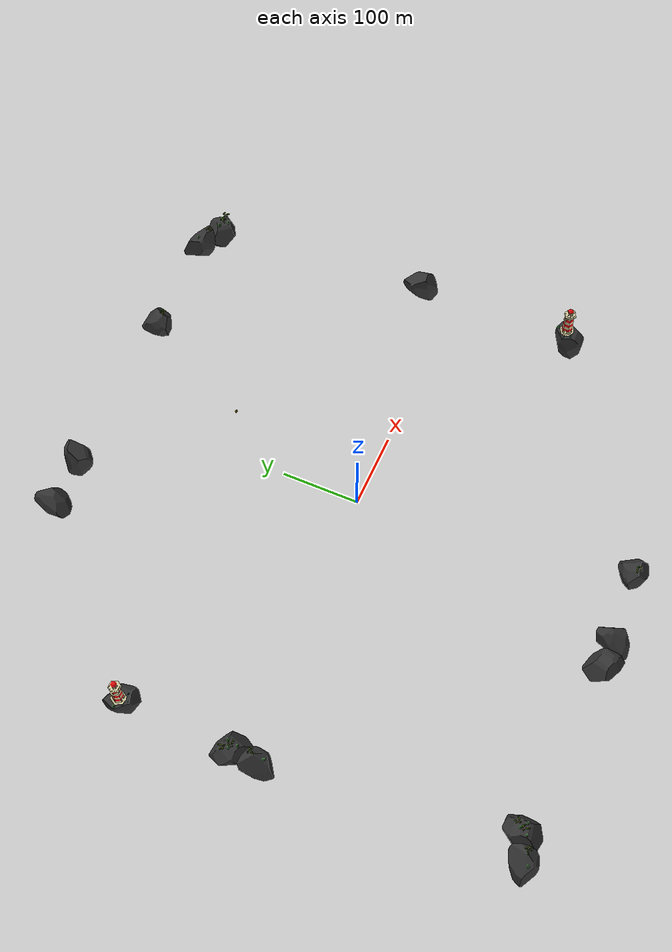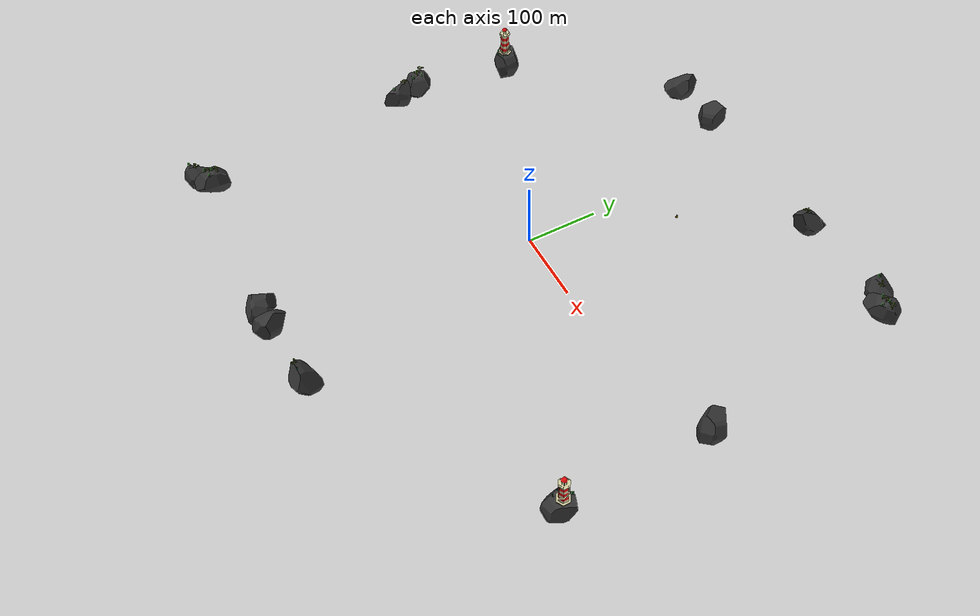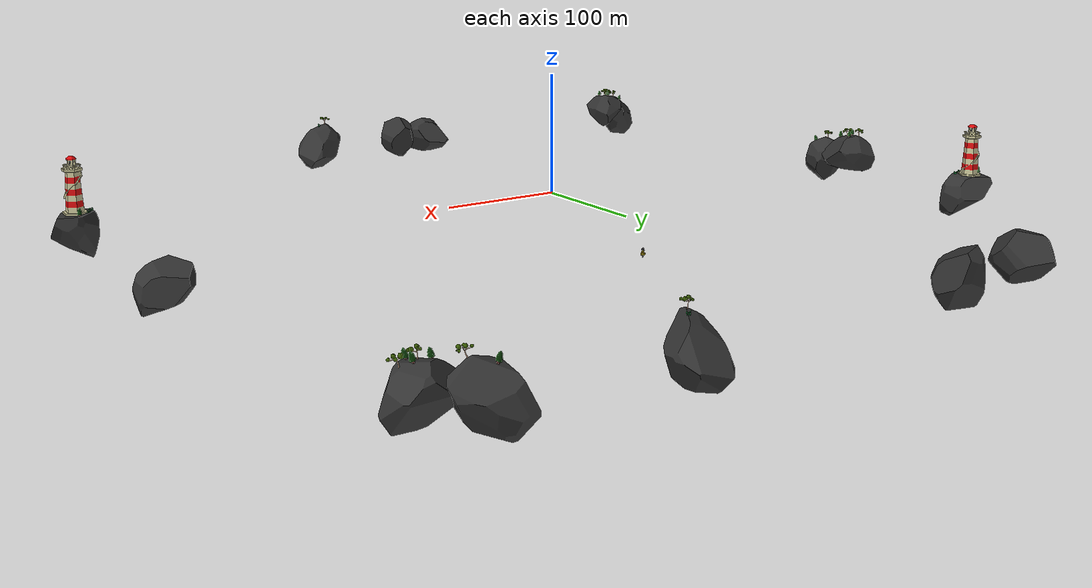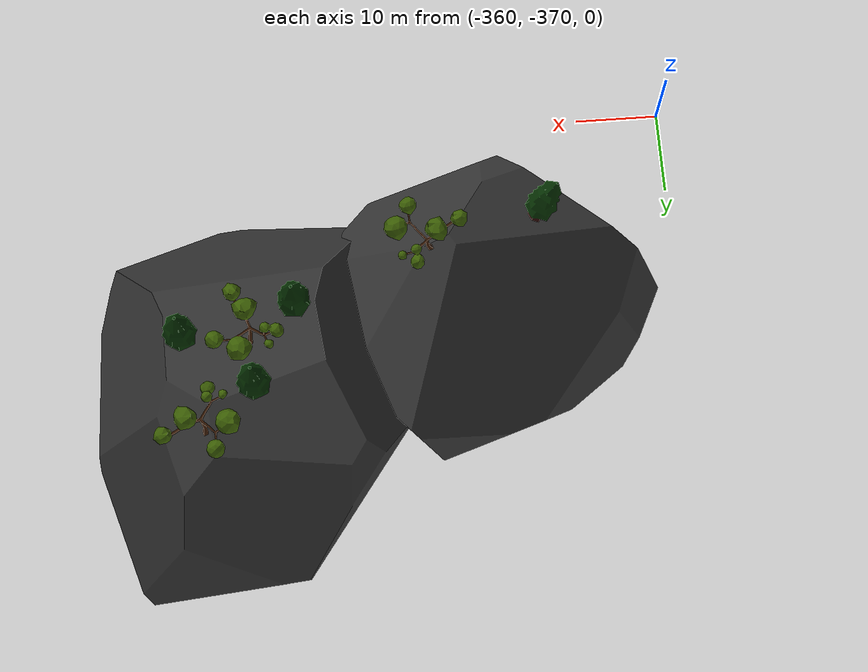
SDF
<sdf version="1.9">
 <world name="aquabot_task_easy">
  <physics name="4ms" type="dart">
   <max_step_size>0.004</max_step_size>
   <real_time_factor>0.0</real_time_factor>
   <real_time_update_rate>0.0</real_time_update_rate>
  </physics>
  <plugin filename="gz-sim-physics-system" name="gz::sim::systems::Physics"/>
  <plugin filename="gz-sim-user-commands-system" name="gz::sim::systems::UserCommands"/>
  <plugin filename="gz-sim-sensors-system" name="gz::sim::systems::Sensors">
   <render_engine>ogre2</render_engine>
   <disable_on_drained_battery>true</disable_on_drained_battery>
  </plugin>
  <plugin filename="gz-sim-imu-system" name="gz::sim::systems::Imu"/>
  <plugin filename="gz-sim-magnetometer-system" name="gz::sim::systems::Magnetometer"/>
  <plugin filename="gz-sim-forcetorque-system" name="gz::sim::systems::ForceTorque"/>
  <plugin filename="gz-sim-particle-emitter2-system" name="gz::sim::systems::ParticleEmitter2"/>
  <plugin filename="gz-sim-scene-broadcaster-system" name="gz::sim::systems::SceneBroadcaster"/>
  <plugin filename="gz-sim-contact-system" name="gz::sim::systems::Contact"/>
  <plugin filename="gz-sim-navsat-system" name="gz::sim::systems::NavSat"/>
  <scene><grid>false</grid><ambient>1.0 1.0 1.0</ambient><background>0.8 0.8 0.8</background></scene>
  <spherical_coordinates>
   <surface_model>EARTH_WGS84</surface_model>
   <world_frame_orientation>ENU</world_frame_orientation>
   <latitude_deg>48.04630</latitude_deg>
   <longitude_deg>-4.97632</longitude_deg>
   <elevation>0.0</elevation>
   <heading_deg>0.0</heading_deg>
  </spherical_coordinates>
  <light type="directional" name="sun">
   <cast_shadows>false</cast_shadows>
   <pose>0 0 10 0 0 0</pose>
   <diffuse>0.8 0.8 0.8 1</diffuse>
   <specular>0.2 0.2 0.2 1</specular>
   <attenuation>
    <range>1000</range>
    <constant>0.9</constant>
    <linear>0.01</linear>
    <quadratic>0.001</quadratic>
   </attenuation>
   <direction>-0.5 0.1 -0.9</direction>
  </light>
  <include>
   <name>aquabot_regatta_no_obstacles_world</name>
   <uri>aquabot_regatta_no_obstacles_world</uri>
  </include>
  <plugin filename="libUSVWind.so" name="vrx::USVWind">
   <wind_obj>
    <name>wamv</name>
    <link_name>wamv/base_link</link_name>
    <coeff_vector>.5 .5 .33</coeff_vector>
   </wind_obj>
   <wind_direction>240</wind_direction>
   <wind_mean_velocity>0.0</wind_mean_velocity>
   <var_wind_gain_constants>0</var_wind_gain_constants>
   <var_wind_time_constants>2</var_wind_time_constants>
   <random_seed>10</random_seed>
   <update_rate>10</update_rate>
   <topic_wind_speed>/vrx/debug/wind/speed</topic_wind_speed>
   <topic_wind_direction>/vrx/debug/wind/direction</topic_wind_direction>
  </plugin>
  <plugin filename="libPublisherPlugin.so" name="vrx::PublisherPlugin">
   <message type="gz.msgs.Param" topic="/vrx/wavefield/parameters" every="2.0">params {
          key: "direction"
          value {
            type: DOUBLE
            double_value: 0.0
          }
        }
        params {
          key: "gain"
          value {
            type: DOUBLE
            double_value: 0.3
          }
        }
        params {
          key: "period"
          value {
            type: DOUBLE
            double_value: 10.0
          }
        }
        params {
          key: "steepness"
          value {
            type: DOUBLE
            double_value: 0.0
          }
        }</message>
  </plugin>
  <generation_seed>iwvwlkNpKebaYJoQ</generation_seed>
  <include>
   <name>aquabot_sonar_buoy</name>
   <pose>59.301643 195.747949 0 0 1.57 0</pose>
   <uri>aquabot_sonar_buoy</uri>
   <plugin name="vrx::PolyhedraBuoyancyDrag" filename="libPolyhedraBuoyancyDrag.so">
    <fluid_density>1000</fluid_density>
    <fluid_level>0.0</fluid_level>
    <linear_drag>25.0</linear_drag>
    <angular_drag>2.0</angular_drag>
    <buoyancy name="collision_outer">
     <link_name>link</link_name>
     <pose>0 0 0 0 -1.57 0</pose>
     <geometry><cylinder><radius>1.0</radius><length>0.05</length></cylinder></geometry>
    </buoyancy>
    <wavefield><topic>/vrx/wavefield/parameters</topic></wavefield>
   </plugin>
  </include>
  <plugin filename="libPublisherPlugin.so" name="vrx::PublisherPlugin">
   <message type="gz.msgs.Vector3d" topic="/pinger/set_pinger_position" at="1.0">x: 59.301643, y: 195.747949, z: 0</message>
  </plugin>
  <plugin filename="libPatrolAndFollowScoringPlugin.so" name="vrx::PatrolAndFollowScoringPlugin">
   <vehicle>wamv</vehicle>
   <task_name>patrolandfollow</task_name>
   <task_info_topic>/vrx/task/info</task_info_topic>
   <initial_state_duration>10</initial_state_duration>
   <ready_state_duration>10</ready_state_duration>
   <running_state_duration>900</running_state_duration>
   <release_topic>/vrx/release</release_topic>
   <pinger_position>59.301643 195.747949 0</pinger_position>
   <target_name>ennemy</target_name>
   <markers><scaling>0.2 0.2 2.0</scaling><height>0.5</height></markers>
   <phase_rally_tolerance>20</phase_rally_tolerance>
   <phase_alert_process_period>1.0</phase_alert_process_period>
   <phase_alert_tolerance>50.0</phase_alert_tolerance>
   <phase_follow_process_period>1.0</phase_follow_process_period>
   <phase_follow_tolerance>50</phase_follow_tolerance>
   <phase_follow_target_distance>30</phase_follow_target_distance>
   <phase_follow_ennemy_time>180.0</phase_follow_ennemy_time>
   <collision_min_distance>10.0</collision_min_distance>
   <collision_finish>true</collision_finish>
   <collision_penality>10</collision_penality>
   <collision_objects>
    <object><name>ally_0</name></object>
    <object><name>ally_1</name></object>
   </collision_objects>
   <ais_allies_period>1.0</ais_allies_period>
   <ais_ennemy_period>10.0</ais_ennemy_period>
   <ais_ennemy_wait_time>180.0</ais_ennemy_wait_time>
  </plugin>
 </world>
</sdf>

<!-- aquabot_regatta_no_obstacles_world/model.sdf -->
<sdf version="1.6">
  <model name="aquabot_regatta_no_obstacles_world">
    <include>
      <name>aquabot_lighthouse_island_1</name>
      <pose>350 -150 0 0 0 0</pose>
      <uri>aquabot_lighthouse_island</uri>
    </include>
    <include>

      <name>aquabot_lighthouse_island_2</name>
      <pose>-350 150 0 0 0 1.57</pose>
      <uri>aquabot_lighthouse_island</uri>
    </include>

    <include>
      <name>aquabot_island_1</name>
      <pose>-350 0 0 0 0 -3.14</pose>
      <uri>aquabot_island</uri>
    </include>

    <include>
      <name>aquabot_island_2</name>
      <pose>310 340 4 0.2 0 1.0</pose>
      <uri>aquabot_island</uri>
    </include>

    <include>
      <name>aquabot_island_3</name>
      <pose>-310 -340 4 0.0 0 2.0</pose>
      <uri>aquabot_island</uri>
    </include>

    <include>
      <name>aquabot_rock_island_0</name>
      <pose>50 -350 0 0 0 0</pose>
      <uri>aquabot_rock_island_1</uri>
    </include>

    <include>
      <name>aquabot_rock_island_1</name>
      <pose>150 350 0 0 0 1</pose>
      <uri>aquabot_rock_island_1</uri>
    </include>

    <include>
      <name>aquabot_rock_0</name>
      <pose>-150 350 0 -2 1 -2</pose>
      <uri>aquabot_rock</uri>
    </include>

    <include>
      <name>aquabot_rock_1</name>
      <pose>-80 350 1 -2 2 -3</pose>
      <uri>aquabot_rock</uri>
    </include>

    <include>
      <name>aquabot_rock_2</name>
      <pose>-80 -350 -6 0 0 0</pose>
      <uri>aquabot_rock</uri>
    </include>

    <include>
      <name>aquabot_rock_3</name>
      <pose>-40 -350 -6 0 2 0</pose>
      <uri>aquabot_rock</uri>
    </include>

    <include>
      <name>aquabot_rock_4</name>
      <pose>350 60 -6 0 1 0</pose>
      <uri>aquabot_rock</uri>
    </include>
  </model>
</sdf>

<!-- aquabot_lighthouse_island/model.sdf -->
<sdf version="1.6">
  <model name="aquabot_lighthouse_island">
    <include>
      <name>aquabot_lighthouse</name>
      <pose>0 0 -0.5 0 0 2.60</pose>
      <uri>aquabot_lighthouse</uri>
    </include>

    <include>
      <name>aquabot_rock_3</name>
      <pose>1.4 -5.55 -10.45 0.41 0.82 -1.09</pose>
      <uri>aquabot_rock</uri>
    </include>

    <include>
      <name>aquabot_grass_1</name>
      <pose>-12 -0.27 0.9 0 0 1</pose>
      <uri>aquabot_grass</uri>
    </include>

    <include>
      <name>aquabot_grass_2</name>
      <pose>-8 6 0.8 0 0 -1</pose>
      <uri>aquabot_grass</uri>
    </include>

    <include>
      <name>aquabot_grass_3</name>
      <pose>-8 -9 0.9 0 0 -2</pose>
      <uri>aquabot_grass</uri>
    </include>

    <include>
      <name>aquabot_sapling_1</name>
      <pose>0 12 0 0 0 0</pose>
      <uri>aquabot_sapling</uri>
    </include>
  </model>
</sdf>

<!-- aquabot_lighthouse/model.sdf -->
<sdf version="1.5">
  <model name="aquabot_lighthouse">
    <static>true</static>
    <link name="link">
      <collision name="collision">
        <pose>0 0 25 0 0 0</pose>
        <geometry>
          <cylinder>
            <radius>12</radius>
            <length>50</length>
          </cylinder>
        </geometry>
      </collision>
      <visual name="visual">
        <pose>0.0 0.0 0.0 0 0 0 </pose>
        <geometry>
          <mesh>
            <scale>.2 .2 .2</scale>
            <uri>mesh/lighthouse.dae</uri>
          </mesh>
        </geometry>
      </visual>
    </link>
  </model>
</sdf>

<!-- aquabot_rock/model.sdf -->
<sdf version="1.5">
  <model name="aquabot_rock">
    <static>true</static>
    <link name="link">
      <collision name="collision">
        <pose>0 0 0 0 0 0</pose>
        <geometry>
          <mesh>
            <scale>20 20 20</scale>
            <uri>mesh/rock.dae</uri>
          </mesh>
        </geometry>
      </collision>
      <visual name="visual">
        <pose>0.0 0.0 0.0 0 0 0 </pose>
        <geometry>
          <mesh>
            <scale>20 20 20</scale>
            <uri>mesh/rock.dae</uri>
          </mesh>
        </geometry>
        <material> <!-- rock material -->
          <ambient>0.5 0.5 0.5 1</ambient>
          <diffuse>0.2 0.2 0.2 1</diffuse>
          <specular>0.4 0.4 0.4 1</specular>
          <emissive>0 0 0 1</emissive>
        </material>
      </visual>
    </link>
  </model>
</sdf>

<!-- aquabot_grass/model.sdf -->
<sdf version="1.5">
  <model name="aquabot_grass">
    <static>true</static>
    <link name="link">
      <visual name="visual">
        <pose>0.0 0.0 0.0 0 0 0 </pose>
        <geometry>
          <mesh>
            <scale>5 5 5</scale>
            <uri>mesh/grass.dae</uri>
          </mesh>
        </geometry>
      </visual>
    </link>
  </model>
</sdf>

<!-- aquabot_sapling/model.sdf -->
<sdf version="1.5">
  <model name="aquabot_sapling">
    <static>true</static>
    <link name="link">
      <collision name="collision">
        <pose>0 0 3.5 0 0 0</pose>
        <geometry>
          <box>
            <size>4 4 7</size>
          </box>
        </geometry>
      </collision>
      <visual name="visual">
        <pose>0.0 0.0 0.0 0 0 0 </pose>
        <geometry>
          <mesh>
            <uri>mesh/sapling.dae</uri>
          </mesh>
        </geometry>
      </visual>
    </link>
  </model>
</sdf>

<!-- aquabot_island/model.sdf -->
<sdf version="1.6">
  <model name="aquabot_island">
    <include>
      <name>the_rock_1</name>
      <pose>0 0 0 0 0 0</pose>
      <uri>aquabot_rock</uri>
    </include>

    <include>
      <name>the_rock_2</name>
      <pose>0 32 -15.8 0 -1.57 0</pose>
      <uri>aquabot_rock</uri>
    </include>

    <include>
      <name>sapling_1</name>
      <pose>0 4.5 11.8 0 0 1.57</pose>
      <uri>aquabot_sapling</uri>
    </include>

    <include>
      <name>sapling_2</name>
      <pose>-2 -8.5 13.5 0 0 0</pose>
      <uri>aquabot_sapling</uri>
    </include>

    <include>
      <name>sapling_3</name>
      <pose>7 -4 14 0 0 0</pose>
      <uri>aquabot_sapling</uri>
    </include>

    <include>
      <name>sapling_4</name>
      <pose>0 36 3 0 -0.4 -1.57</pose>
      <uri>aquabot_sapling</uri>
    </include>

    <include>
      <name>tree_1</name>
      <pose>2 -2 14 0 0 0</pose>
      <uri>aquabot_tree</uri>
    </include>

    <include>
      <name>tree_2</name>
      <pose>9 -11 14 0 0 1.57</pose>
      <uri>aquabot_tree</uri>
    </include>

    <include>
      <name>tree_3</name>
      <pose>0 22 9 0 0.2 -1.57</pose>
      <uri>aquabot_tree</uri>
    </include>
  </model>
</sdf>

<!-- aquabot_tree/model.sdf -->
<sdf version="1.5">
  <model name="aquabot_tree">
    <static>true</static>
    <link name="link">
      <collision name="collision">
        <pose>0 0 4 0 0 0</pose>
        <geometry>
          <cylinder>
            <radius>4</radius>
            <length>8</length>
          </cylinder>
        </geometry>
      </collision>
      <visual name="visual">
        <pose>0.0 0.0 0.0 0 0 0 </pose>
        <geometry>
          <mesh>
            <uri>mesh/tree.dae</uri>
          </mesh>
        </geometry>
      </visual>
    </link>
  </model>
</sdf>

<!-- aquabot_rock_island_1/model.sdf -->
<sdf version="1.6">
  <model name="aquabot_rock_island_1">
    <include>
      <name>aquabot_rock_1</name>
      <pose>0 0 -6 2 0 0</pose>
      <uri>aquabot_rock</uri>
    </include>

    <include>
      <name>aquabot_tree_1</name>
      <pose>-5.6 0 15 0 0 0</pose>
      <uri>aquabot_tree</uri>
    </include>

    <include>
      <name>aquabot_grass_1</name>
      <pose>0 0 13 0 0 0</pose>
      <uri>aquabot_grass</uri>
    </include>
  </model>
</sdf>

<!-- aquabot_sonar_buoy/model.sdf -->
<sdf version="1.5">
  <model name="aquabot_sonar_buoy">
    <link name="link">
      <inertial>
          <pose>0 0 0.0 0 0 0</pose>
          <mass>100</mass>
          <inertia>
              <ixx>23.16</ixx>
              <ixy>0</ixy>
              <ixz>0</ixz>
              <iyy>23.16</iyy>
              <iyz>0</iyz>
              <izz>2.25</izz>
          </inertia>
      </inertial>
      <collision name="collision_inner">
          <pose>0 0 0 0 1.57 0</pose>
          <geometry>
              <cylinder>
                  <radius>1.3</radius>
                  <length>7.5</length>
              </cylinder>
          </geometry>
      </collision>
      <collision name="collision_outer">
          <pose>0 0 0.0 0 1.57 0</pose>
          <geometry>
              <cylinder>
                  <radius>1.65</radius>
                  <length>1.5</length>
              </cylinder>
          </geometry>
      </collision>
      <visual name="visual">
        <pose>0.0 0.0 0.0 0 -1.57 0 </pose>
        <geometry>
          <mesh>
            <scale>1 1 1</scale>
            <uri>mesh/sonar_buoy.dae</uri>
          </mesh>
        </geometry>
      </visual>
    </link>
  </model>
</sdf>
